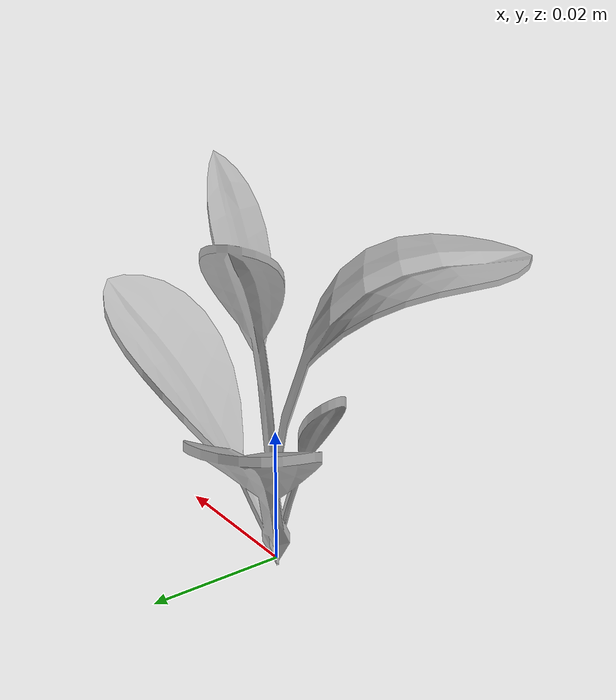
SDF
<sdf version="1.6">
  <model name="sugar_beet_23">
    <static>true</static>
    <link name="body">
      <visual name="visual">
        <geometry>
          <mesh>
            <uri>file:///sugar_beet_23/media/sugar_beet.dae</uri>
          </mesh>
        </geometry>
      </visual>
    </link>
  </model>
</sdf>
